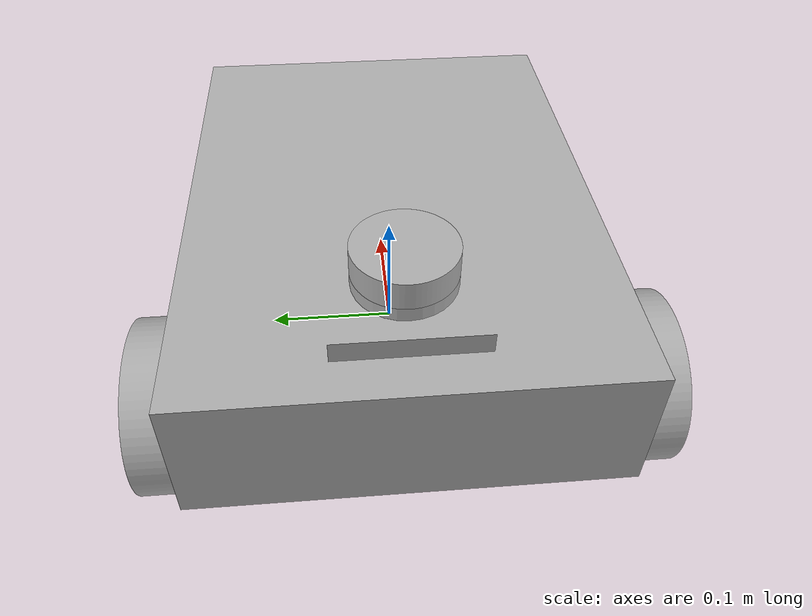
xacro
<?xml version="1.0" ?>
<robot name="robot_rover" xmlns:xacro="http://www.ros.org/wiki/xacro">

<xacro:include filename="$(find robot_rover_description)/urdf/materials.xacro" />
<xacro:include filename="$(find robot_rover_description)/urdf/robot_rover.trans" />
<xacro:include filename="$(find robot_rover_description)/urdf/robot_rover.gazebo" />
<link name="base_link">
  <inertial>
    <origin xyz="-0.0015677956717559365 4.7519475984388513e-17 0.09064877096736237" rpy="0 0 0"/>
    <mass value="96.15639244861063"/>
    <inertia ixx="0.797148" iyy="1.372628" izz="1.998767" ixy="0.0" iyz="0.0" ixz="0.013072"/>
  </inertial>
  <visual>
    <origin xyz="0 0 0" rpy="0 0 0"/>
    <geometry>
      <mesh filename="package://robot_rover_description/meshes/base_link.stl" scale="0.001 0.001 0.001"/>
    </geometry>
    <material name="silver"/>
  </visual>
  <collision>
    <origin xyz="0 0 0" rpy="0 0 0"/>
    <geometry>
      <mesh filename="package://robot_rover_description/meshes/base_link.stl" scale="0.001 0.001 0.001"/>
    </geometry>
  </collision>
</link>

<link name="left_1">
  <inertial>
    <origin xyz="-5.551115123125783e-17 -0.015000000000000013 0.0" rpy="0 0 0"/>
    <mass value="2.6634422517134286"/>
    <inertia ixx="0.002597" iyy="0.004794" izz="0.002597" ixy="0.0" iyz="-0.0" ixz="-0.0"/>
  </inertial>
  <visual>
    <origin xyz="0.13 0.15 -0.06" rpy="0 0 0"/>
    <geometry>
      <mesh filename="package://robot_rover_description/meshes/left_1.stl" scale="0.001 0.001 0.001"/>
    </geometry>
    <material name="silver"/>
  </visual>
  <collision>
    <origin xyz="0.13 0.15 -0.06" rpy="0 0 0"/>
    <geometry>
      <mesh filename="package://robot_rover_description/meshes/left_1.stl" scale="0.001 0.001 0.001"/>
    </geometry>
  </collision>
</link>

<link name="right_1">
  <inertial>
    <origin xyz="-5.551115123125783e-17 0.015000000000000013 0.0" rpy="0 0 0"/>
    <mass value="2.6634422517134286"/>
    <inertia ixx="0.002597" iyy="0.004794" izz="0.002597" ixy="-0.0" iyz="0.0" ixz="-0.0"/>
  </inertial>
  <visual>
    <origin xyz="0.13 -0.15 -0.06" rpy="0 0 0"/>
    <geometry>
      <mesh filename="package://robot_rover_description/meshes/right_1.stl" scale="0.001 0.001 0.001"/>
    </geometry>
    <material name="silver"/>
  </visual>
  <collision>
    <origin xyz="0.13 -0.15 -0.06" rpy="0 0 0"/>
    <geometry>
      <mesh filename="package://robot_rover_description/meshes/right_1.stl" scale="0.001 0.001 0.001"/>
    </geometry>
  </collision>
</link>

<link name="lidar_1">
  <inertial>
    <origin xyz="-6.938893903907228e-17 1.477046709214803e-17 0.009999999999999981" rpy="0 0 0"/>
    <mass value="0.604206807101657"/>
    <inertia ixx="0.000205" iyy="0.000205" izz="0.00037" ixy="-0.0" iyz="-0.0" ixz="-0.0"/>
  </inertial>
  <visual>
    <origin xyz="0.12 -0.0 -0.165" rpy="0 0 0"/>
    <geometry>
      <mesh filename="package://robot_rover_description/meshes/lidar_1.stl" scale="0.001 0.001 0.001"/>
    </geometry>
    <material name="silver"/>
  </visual>
  <collision>
    <origin xyz="0.12 -0.0 -0.165" rpy="0 0 0"/>
    <geometry>
      <mesh filename="package://robot_rover_description/meshes/lidar_1.stl" scale="0.001 0.001 0.001"/>
    </geometry>
  </collision>
</link>

<joint name="Revolute 1" type="continuous">
  <origin xyz="-0.13 -0.15 0.06" rpy="0 0 0"/>
  <parent link="base_link"/>
  <child link="left_1"/>
  <axis xyz="0.0 1.0 0.0"/>
</joint>

<joint name="Revolute 2" type="continuous">
  <origin xyz="-0.13 0.15 0.06" rpy="0 0 0"/>
  <parent link="base_link"/>
  <child link="right_1"/>
  <axis xyz="0.0 -1.0 0.0"/>
</joint>

<joint name="Rigid 3" type="fixed">
  <origin xyz="-0.12 0.0 0.165" rpy="0 0 0"/>
  <parent link="base_link"/>
  <child link="lidar_1"/>
</joint>

</robot>

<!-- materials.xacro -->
<robot name="robot_rover" xmlns:xacro="http://www.ros.org/wiki/xacro" >

<material name="silver">
  <color rgba="0.700 0.700 0.700 1.000"/>
</material>

</robot>

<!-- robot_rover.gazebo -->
<robot name="robot_rover" xmlns:xacro="http://www.ros.org/wiki/xacro" >

<xacro:property name="body_color" value="Gazebo/Silver" />

<gazebo>
  <plugin name="control" filename="libgazebo_ros_control.so"/>
</gazebo>
<gazebo reference="base_link">
  <material>${body_color}</material>
  <mu1>0.2</mu1>
  <mu2>0.2</mu2>
  <selfCollide>true</selfCollide>
  <gravity>true</gravity>
</gazebo>

<gazebo reference="left_1">
  <material>${body_color}</material>
  <mu1>0.2</mu1>
  <mu2>0.2</mu2>
  <selfCollide>true</selfCollide>
</gazebo>

<gazebo reference="right_1">
  <material>${body_color}</material>
  <mu1>0.2</mu1>
  <mu2>0.2</mu2>
  <selfCollide>true</selfCollide>
</gazebo>

<gazebo reference="lidar_1">
  <material>${body_color}</material>
  <mu1>0.2</mu1>
  <mu2>0.2</mu2>
  <selfCollide>true</selfCollide>
</gazebo>

</robot>
